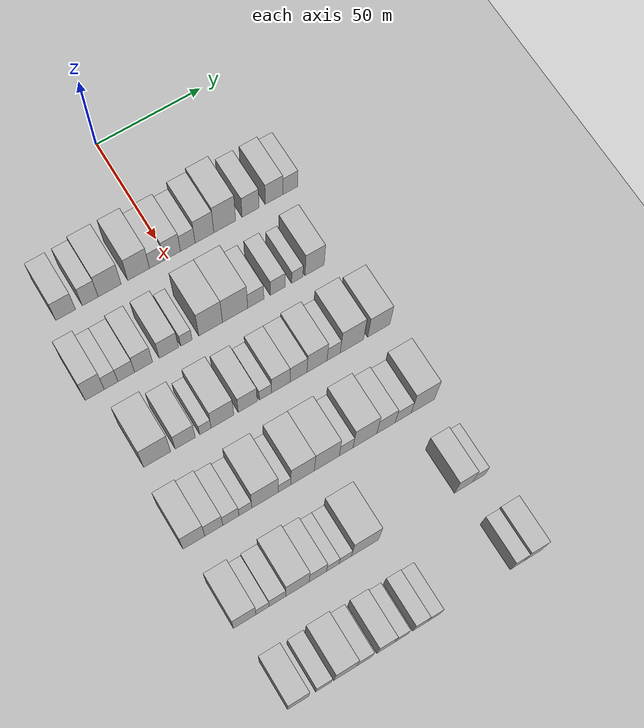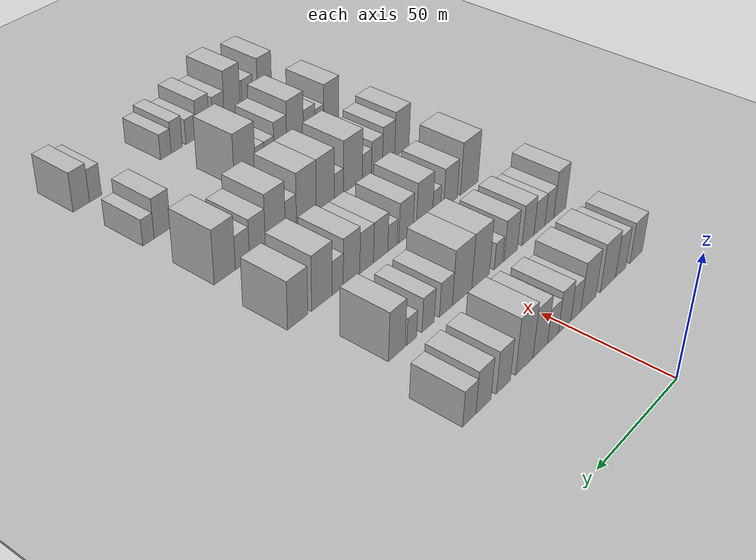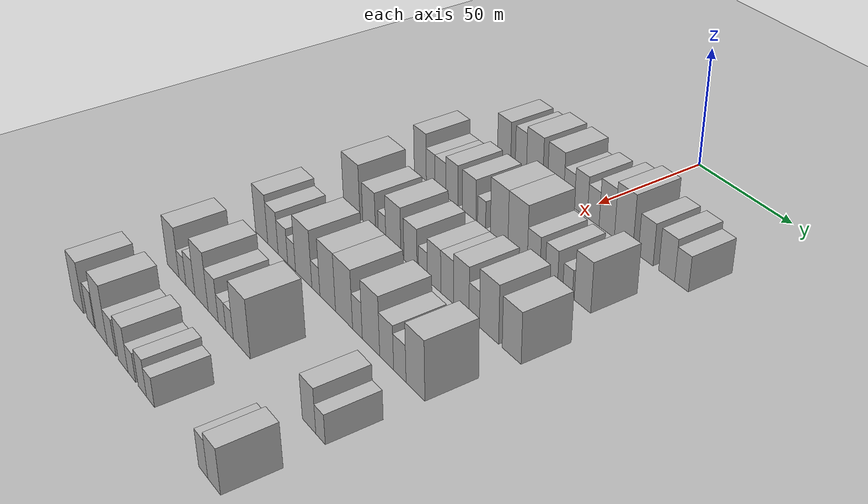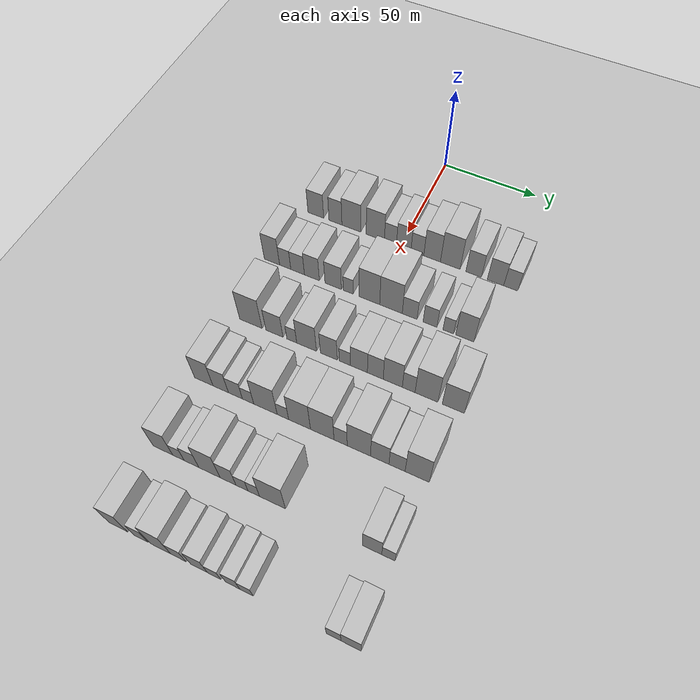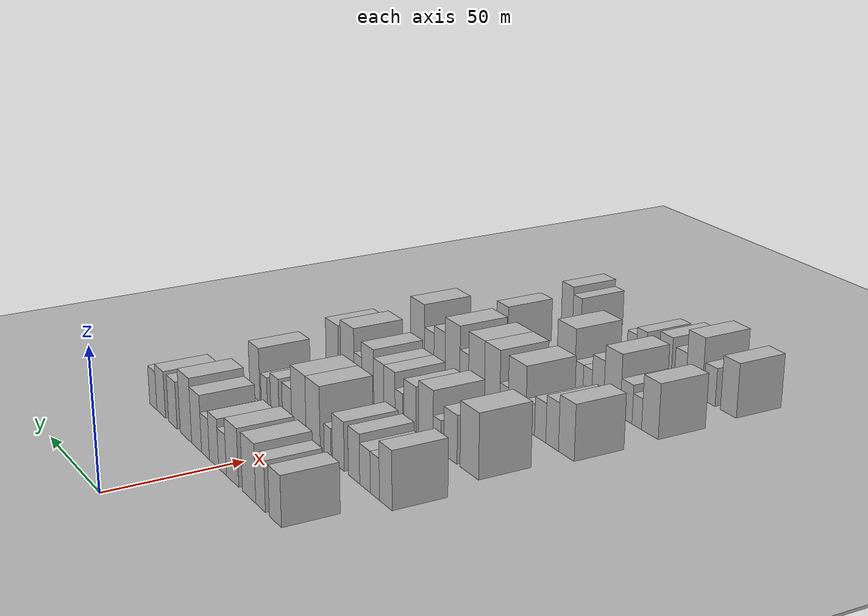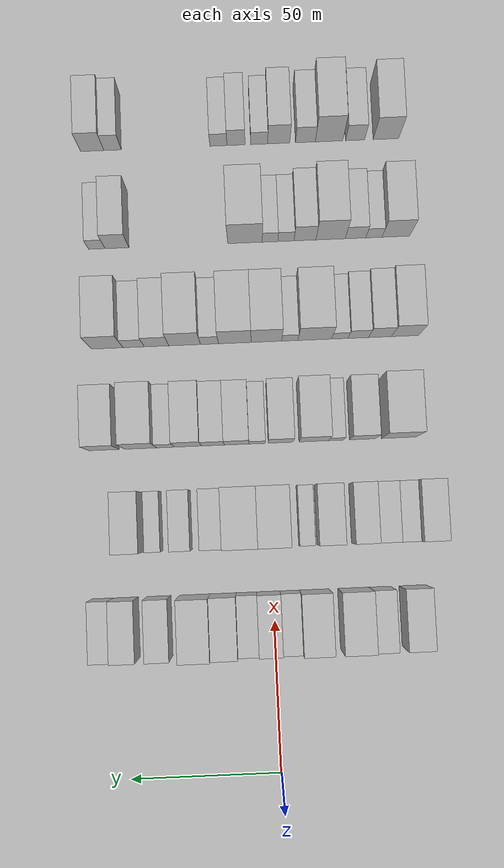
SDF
<sdf version="1.6">
 <world name="default">
  <include><name>ground_plane_1</name><uri>model://HANNAS_ground_plane</uri></include>
  <include>
   <name>ground_plane_2</name>
   <uri>model://HANNAS_ground_plane</uri>
   <pose>100 0 0  0 0 0</pose>
  </include>
  <model name="building_61">
   <static>1</static>
   <pose>50.0000 -46.7368 0 0.000000 0.000000 0.000000</pose>
   <link name="link">
    <pose>0 0 9.00 0 0 0</pose>
    <collision name="collision"><geometry><box><size>20.0000 8.9100 18.0000</size></box></geometry></collision>
    <visual name="visual">
     <cast_shadows>0</cast_shadows>
     <geometry><box><size>20.0000 8.9100 18.0000</size></box></geometry>
     <material>
      <script>
       <uri>model://HANNAS_wall/materials/scripts</uri>
       <uri>model://HANNAS_wall/materials/textures</uri>
       <name>vrc/HANNAS_wall</name>
      </script>
     </material>
    </visual>
   </link>
  </model>
  <model name="building_62">
   <static>1</static>
   <pose>50.0000 -35.6506 0 0.000000 0.000000 0.000000</pose>
   <link name="link">
    <pose>0 0 9.00 0 0 0</pose>
    <collision name="collision"><geometry><box><size>20.0000 7.2624 18.0000</size></box></geometry></collision>
    <visual name="visual">
     <cast_shadows>0</cast_shadows>
     <geometry><box><size>20.0000 7.2624 18.0000</size></box></geometry>
     <material>
      <script>
       <uri>model://HANNAS_wall/materials/scripts</uri>
       <uri>model://HANNAS_wall/materials/textures</uri>
       <name>vrc/HANNAS_wall</name>
      </script>
     </material>
    </visual>
   </link>
  </model>
  <model name="building_63">
   <static>1</static>
   <pose>50.0000 -26.7902 0 0.000000 0.000000 0.000000</pose>
   <link name="link">
    <pose>0 0 10.50 0 0 0</pose>
    <collision name="collision"><geometry><box><size>20.0000 10.4585 21.0000</size></box></geometry></collision>
    <visual name="visual">
     <cast_shadows>0</cast_shadows>
     <geometry><box><size>20.0000 10.4585 21.0000</size></box></geometry>
     <material>
      <script>
       <uri>model://HANNAS_wall/materials/scripts</uri>
       <uri>model://HANNAS_wall/materials/textures</uri>
       <name>vrc/HANNAS_wall</name>
      </script>
     </material>
    </visual>
   </link>
  </model>
  <model name="building_64">
   <static>1</static>
   <pose>50.0000 -13.5660 0 0.000000 0.000000 0.000000</pose>
   <link name="link">
    <pose>0 0 10.50 0 0 0</pose>
    <collision name="collision"><geometry><box><size>20.0000 9.9898 21.0000</size></box></geometry></collision>
    <visual name="visual">
     <cast_shadows>0</cast_shadows>
     <geometry><box><size>20.0000 9.9898 21.0000</size></box></geometry>
     <material>
      <script>
       <uri>model://HANNAS_wall/materials/scripts</uri>
       <uri>model://HANNAS_wall/materials/textures</uri>
       <name>vrc/HANNAS_wall</name>
      </script>
     </material>
    </visual>
   </link>
  </model>
  <model name="building_65">
   <static>1</static>
   <pose>50.0000 -5.3005 0 0.000000 0.000000 0.000000</pose>
   <link name="link">
    <pose>0 0 7.50 0 0 0</pose>
    <collision name="collision"><geometry><box><size>20.0000 6.5413 15.0000</size></box></geometry></collision>
    <visual name="visual">
     <cast_shadows>0</cast_shadows>
     <geometry><box><size>20.0000 6.5413 15.0000</size></box></geometry>
     <material>
      <script>
       <uri>model://HANNAS_wall/materials/scripts</uri>
       <uri>model://HANNAS_wall/materials/textures</uri>
       <name>vrc/HANNAS_wall</name>
      </script>
     </material>
    </visual>
   </link>
  </model>
  <model name="building_66">
   <static>1</static>
   <pose>50.0000 1.8615 0 0.000000 0.000000 0.000000</pose>
   <link name="link">
    <pose>0 0 9.00 0 0 0</pose>
    <collision name="collision"><geometry><box><size>20.0000 7.7826 18.0000</size></box></geometry></collision>
    <visual name="visual">
     <cast_shadows>0</cast_shadows>
     <geometry><box><size>20.0000 7.7826 18.0000</size></box></geometry>
     <material>
      <script>
       <uri>model://HANNAS_wall/materials/scripts</uri>
       <uri>model://HANNAS_wall/materials/textures</uri>
       <name>vrc/HANNAS_wall</name>
      </script>
     </material>
    </visual>
   </link>
  </model>
  <model name="building_67">
   <static>1</static>
   <pose>50.0000 9.1710 0 0.000000 0.000000 0.000000</pose>
   <link name="link">
    <pose>0 0 7.50 0 0 0</pose>
    <collision name="collision"><geometry><box><size>20.0000 6.8363 15.0000</size></box></geometry></collision>
    <visual name="visual">
     <cast_shadows>0</cast_shadows>
     <geometry><box><size>20.0000 6.8363 15.0000</size></box></geometry>
     <material>
      <script>
       <uri>model://HANNAS_wall/materials/scripts</uri>
       <uri>model://HANNAS_wall/materials/textures</uri>
       <name>vrc/HANNAS_wall</name>
      </script>
     </material>
    </visual>
   </link>
  </model>
  <model name="building_68">
   <static>1</static>
   <pose>50.0000 16.9733 0 0.000000 0.000000 0.000000</pose>
   <link name="link">
    <pose>0 0 10.50 0 0 0</pose>
    <collision name="collision"><geometry><box><size>20.0000 8.7684 21.0000</size></box></geometry></collision>
    <visual name="visual">
     <cast_shadows>0</cast_shadows>
     <geometry><box><size>20.0000 8.7684 21.0000</size></box></geometry>
     <material>
      <script>
       <uri>model://HANNAS_wall/materials/scripts</uri>
       <uri>model://HANNAS_wall/materials/textures</uri>
       <name>vrc/HANNAS_wall</name>
      </script>
     </material>
    </visual>
   </link>
  </model>
  <model name="building_69">
   <static>1</static>
   <pose>50.0000 26.4883 0 0.000000 0.000000 0.000000</pose>
   <link name="link">
    <pose>0 0 12.00 0 0 0</pose>
    <collision name="collision"><geometry><box><size>20.0000 10.2615 24.0000</size></box></geometry></collision>
    <visual name="visual">
     <cast_shadows>0</cast_shadows>
     <geometry><box><size>20.0000 10.2615 24.0000</size></box></geometry>
     <material>
      <script>
       <uri>model://HANNAS_wall/materials/scripts</uri>
       <uri>model://HANNAS_wall/materials/textures</uri>
       <name>vrc/HANNAS_wall</name>
      </script>
     </material>
    </visual>
   </link>
  </model>
  <model name="building_70">
   <static>1</static>
   <pose>50.0000 38.6159 0 0.000000 0.000000 0.000000</pose>
   <link name="link">
    <pose>0 0 9.00 0 0 0</pose>
    <collision name="collision"><geometry><box><size>20.0000 7.9937 18.0000</size></box></geometry></collision>
    <visual name="visual">
     <cast_shadows>0</cast_shadows>
     <geometry><box><size>20.0000 7.9937 18.0000</size></box></geometry>
     <material>
      <script>
       <uri>model://HANNAS_wall/materials/scripts</uri>
       <uri>model://HANNAS_wall/materials/textures</uri>
       <name>vrc/HANNAS_wall</name>
      </script>
     </material>
    </visual>
   </link>
  </model>
  <model name="building_71">
   <static>1</static>
   <pose>50.0000 49.7891 0 0.000000 0.000000 0.000000</pose>
   <link name="link">
    <pose>0 0 9.00 0 0 0</pose>
    <collision name="collision"><geometry><box><size>20.0000 8.3528 18.0000</size></box></geometry></collision>
    <visual name="visual">
     <cast_shadows>0</cast_shadows>
     <geometry><box><size>20.0000 8.3528 18.0000</size></box></geometry>
     <material>
      <script>
       <uri>model://HANNAS_wall/materials/scripts</uri>
       <uri>model://HANNAS_wall/materials/textures</uri>
       <name>vrc/HANNAS_wall</name>
      </script>
     </material>
    </visual>
   </link>
  </model>
  <model name="building_72">
   <static>1</static>
   <pose>50.0000 57.5065 0 0.000000 0.000000 0.000000</pose>
   <link name="link">
    <pose>0 0 7.50 0 0 0</pose>
    <collision name="collision"><geometry><box><size>20.0000 7.0818 15.0000</size></box></geometry></collision>
    <visual name="visual">
     <cast_shadows>0</cast_shadows>
     <geometry><box><size>20.0000 7.0818 15.0000</size></box></geometry>
     <material>
      <script>
       <uri>model://HANNAS_wall/materials/scripts</uri>
       <uri>model://HANNAS_wall/materials/textures</uri>
       <name>vrc/HANNAS_wall</name>
      </script>
     </material>
    </visual>
   </link>
  </model>
  <model name="building_183">
   <static>1</static>
   <pose>85.0000 -52.8776 0 0.000000 0.000000 0.000000</pose>
   <link name="link">
    <pose>0 0 10.50 0 0 0</pose>
    <collision name="collision"><geometry><box><size>20.0000 8.4892 21.0000</size></box></geometry></collision>
    <visual name="visual">
     <cast_shadows>0</cast_shadows>
     <geometry><box><size>20.0000 8.4892 21.0000</size></box></geometry>
     <material>
      <script>
       <uri>model://HANNAS_wall/materials/scripts</uri>
       <uri>model://HANNAS_wall/materials/textures</uri>
       <name>vrc/HANNAS_wall</name>
      </script>
     </material>
    </visual>
   </link>
  </model>
  <model name="building_184">
   <static>1</static>
   <pose>85.0000 -45.5589 0 0.000000 0.000000 0.000000</pose>
   <link name="link">
    <pose>0 0 7.50 0 0 0</pose>
    <collision name="collision"><geometry><box><size>20.0000 6.1482 15.0000</size></box></geometry></collision>
    <visual name="visual">
     <cast_shadows>0</cast_shadows>
     <geometry><box><size>20.0000 6.1482 15.0000</size></box></geometry>
     <material>
      <script>
       <uri>model://HANNAS_wall/materials/scripts</uri>
       <uri>model://HANNAS_wall/materials/textures</uri>
       <name>vrc/HANNAS_wall</name>
      </script>
     </material>
    </visual>
   </link>
  </model>
  <model name="building_185">
   <static>1</static>
   <pose>85.0000 -38.7709 0 0.000000 0.000000 0.000000</pose>
   <link name="link">
    <pose>0 0 7.50 0 0 0</pose>
    <collision name="collision"><geometry><box><size>20.0000 7.4279 15.0000</size></box></geometry></collision>
    <visual name="visual">
     <cast_shadows>0</cast_shadows>
     <geometry><box><size>20.0000 7.4279 15.0000</size></box></geometry>
     <material>
      <script>
       <uri>model://HANNAS_wall/materials/scripts</uri>
       <uri>model://HANNAS_wall/materials/textures</uri>
       <name>vrc/HANNAS_wall</name>
      </script>
     </material>
    </visual>
   </link>
  </model>
  <model name="building_186">
   <static>1</static>
   <pose>85.0000 -31.0342 0 0.000000 0.000000 0.000000</pose>
   <link name="link">
    <pose>0 0 9.00 0 0 0</pose>
    <collision name="collision"><geometry><box><size>20.0000 8.0455 18.0000</size></box></geometry></collision>
    <visual name="visual">
     <cast_shadows>0</cast_shadows>
     <geometry><box><size>20.0000 8.0455 18.0000</size></box></geometry>
     <material>
      <script>
       <uri>model://HANNAS_wall/materials/scripts</uri>
       <uri>model://HANNAS_wall/materials/textures</uri>
       <name>vrc/HANNAS_wall</name>
      </script>
     </material>
    </visual>
   </link>
  </model>
  <model name="building_187">
   <static>1</static>
   <pose>85.0000 -19.6444 0 0.000000 0.000000 0.000000</pose>
   <link name="link">
    <pose>0 0 9.00 0 0 0</pose>
    <collision name="collision"><geometry><box><size>20.0000 8.7340 18.0000</size></box></geometry></collision>
    <visual name="visual">
     <cast_shadows>0</cast_shadows>
     <geometry><box><size>20.0000 8.7340 18.0000</size></box></geometry>
     <material>
      <script>
       <uri>model://HANNAS_wall/materials/scripts</uri>
       <uri>model://HANNAS_wall/materials/textures</uri>
       <name>vrc/HANNAS_wall</name>
      </script>
     </material>
    </visual>
   </link>
  </model>
  <model name="building_188">
   <static>1</static>
   <pose>85.0000 -11.6924 0 0.000000 0.000000 0.000000</pose>
   <link name="link">
    <pose>0 0 6.00 0 0 0</pose>
    <collision name="collision"><geometry><box><size>20.0000 5.1700 12.0000</size></box></geometry></collision>
    <visual name="visual">
     <cast_shadows>0</cast_shadows>
     <geometry><box><size>20.0000 5.1700 12.0000</size></box></geometry>
     <material>
      <script>
       <uri>model://HANNAS_wall/materials/scripts</uri>
       <uri>model://HANNAS_wall/materials/textures</uri>
       <name>vrc/HANNAS_wall</name>
      </script>
     </material>
    </visual>
   </link>
  </model>
  <model name="building_189">
   <static>1</static>
   <pose>85.0000 -0.6763 0 0.000000 0.000000 0.000000</pose>
   <link name="link">
    <pose>0 0 12.00 0 0 0</pose>
    <collision name="collision"><geometry><box><size>20.0000 10.8621 24.0000</size></box></geometry></collision>
    <visual name="visual">
     <cast_shadows>0</cast_shadows>
     <geometry><box><size>20.0000 10.8621 24.0000</size></box></geometry>
     <material>
      <script>
       <uri>model://HANNAS_wall/materials/scripts</uri>
       <uri>model://HANNAS_wall/materials/textures</uri>
       <name>vrc/HANNAS_wall</name>
      </script>
     </material>
    </visual>
   </link>
  </model>
  <model name="building_190">
   <static>1</static>
   <pose>85.0000 10.5556 0 0.000000 0.000000 0.000000</pose>
   <link name="link">
    <pose>0 0 12.00 0 0 0</pose>
    <collision name="collision"><geometry><box><size>20.0000 11.6018 24.0000</size></box></geometry></collision>
    <visual name="visual">
     <cast_shadows>0</cast_shadows>
     <geometry><box><size>20.0000 11.6018 24.0000</size></box></geometry>
     <material>
      <script>
       <uri>model://HANNAS_wall/materials/scripts</uri>
       <uri>model://HANNAS_wall/materials/textures</uri>
       <name>vrc/HANNAS_wall</name>
      </script>
     </material>
    </visual>
   </link>
  </model>
  <model name="building_191">
   <static>1</static>
   <pose>85.0000 20.1054 0 0.000000 0.000000 0.000000</pose>
   <link name="link">
    <pose>0 0 7.50 0 0 0</pose>
    <collision name="collision"><geometry><box><size>20.0000 7.4977 15.0000</size></box></geometry></collision>
    <visual name="visual">
     <cast_shadows>0</cast_shadows>
     <geometry><box><size>20.0000 7.4977 15.0000</size></box></geometry>
     <material>
      <script>
       <uri>model://HANNAS_wall/materials/scripts</uri>
       <uri>model://HANNAS_wall/materials/textures</uri>
       <name>vrc/HANNAS_wall</name>
      </script>
     </material>
    </visual>
   </link>
  </model>
  <model name="building_192">
   <static>1</static>
   <pose>85.0000 30.3245 0 0.000000 0.000000 0.000000</pose>
   <link name="link">
    <pose>0 0 7.50 0 0 0</pose>
    <collision name="collision"><geometry><box><size>20.0000 6.9406 15.0000</size></box></geometry></collision>
    <visual name="visual">
     <cast_shadows>0</cast_shadows>
     <geometry><box><size>20.0000 6.9406 15.0000</size></box></geometry>
     <material>
      <script>
       <uri>model://HANNAS_wall/materials/scripts</uri>
       <uri>model://HANNAS_wall/materials/textures</uri>
       <name>vrc/HANNAS_wall</name>
      </script>
     </material>
    </visual>
   </link>
  </model>
  <model name="building_193">
   <static>1</static>
   <pose>85.0000 39.4359 0 0.000000 0.000000 0.000000</pose>
   <link name="link">
    <pose>0 0 6.00 0 0 0</pose>
    <collision name="collision"><geometry><box><size>20.0000 5.2821 12.0000</size></box></geometry></collision>
    <visual name="visual">
     <cast_shadows>0</cast_shadows>
     <geometry><box><size>20.0000 5.2821 12.0000</size></box></geometry>
     <material>
      <script>
       <uri>model://HANNAS_wall/materials/scripts</uri>
       <uri>model://HANNAS_wall/materials/textures</uri>
       <name>vrc/HANNAS_wall</name>
      </script>
     </material>
    </visual>
   </link>
  </model>
  <model name="building_194">
   <static>1</static>
   <pose>85.0000 47.5501 0 0.000000 0.000000 0.000000</pose>
   <link name="link">
    <pose>0 0 10.50 0 0 0</pose>
    <collision name="collision"><geometry><box><size>20.0000 8.9465 21.0000</size></box></geometry></collision>
    <visual name="visual">
     <cast_shadows>0</cast_shadows>
     <geometry><box><size>20.0000 8.9465 21.0000</size></box></geometry>
     <material>
      <script>
       <uri>model://HANNAS_wall/materials/scripts</uri>
       <uri>model://HANNAS_wall/materials/textures</uri>
       <name>vrc/HANNAS_wall</name>
      </script>
     </material>
    </visual>
   </link>
  </model>
  <model name="building_313">
   <static>1</static>
   <pose>120.0000 -44.8770 0 0.000000 0.000000 0.000000</pose>
   <link name="link">
    <pose>0 0 12.00 0 0 0</pose>
    <collision name="collision"><geometry><box><size>20.0000 11.8777 24.0000</size></box></geometry></collision>
    <visual name="visual">
     <cast_shadows>0</cast_shadows>
     <geometry><box><size>20.0000 11.8777 24.0000</size></box></geometry>
     <material>
      <script>
       <uri>model://HANNAS_wall/materials/scripts</uri>
       <uri>model://HANNAS_wall/materials/textures</uri>
       <name>vrc/HANNAS_wall</name>
      </script>
     </material>
    </visual>
   </link>
  </model>
  <model name="building_314">
   <static>1</static>
   <pose>120.0000 -32.4775 0 0.000000 0.000000 0.000000</pose>
   <link name="link">
    <pose>0 0 9.00 0 0 0</pose>
    <collision name="collision"><geometry><box><size>20.0000 8.9213 18.0000</size></box></geometry></collision>
    <visual name="visual">
     <cast_shadows>0</cast_shadows>
     <geometry><box><size>20.0000 8.9213 18.0000</size></box></geometry>
     <material>
      <script>
       <uri>model://HANNAS_wall/materials/scripts</uri>
       <uri>model://HANNAS_wall/materials/textures</uri>
       <name>vrc/HANNAS_wall</name>
      </script>
     </material>
    </visual>
   </link>
  </model>
  <model name="building_315">
   <static>1</static>
   <pose>120.0000 -23.4645 0 0.000000 0.000000 0.000000</pose>
   <link name="link">
    <pose>0 0 6.00 0 0 0</pose>
    <collision name="collision"><geometry><box><size>20.0000 5.1047 12.0000</size></box></geometry></collision>
    <visual name="visual">
     <cast_shadows>0</cast_shadows>
     <geometry><box><size>20.0000 5.1047 12.0000</size></box></geometry>
     <material>
      <script>
       <uri>model://HANNAS_wall/materials/scripts</uri>
       <uri>model://HANNAS_wall/materials/textures</uri>
       <name>vrc/HANNAS_wall</name>
      </script>
     </material>
    </visual>
   </link>
  </model>
  <model name="building_316">
   <static>1</static>
   <pose>120.0000 -15.8586 0 0.000000 0.000000 0.000000</pose>
   <link name="link">
    <pose>0 0 10.50 0 0 0</pose>
    <collision name="collision"><geometry><box><size>20.0000 10.1072 21.0000</size></box></geometry></collision>
    <visual name="visual">
     <cast_shadows>0</cast_shadows>
     <geometry><box><size>20.0000 10.1072 21.0000</size></box></geometry>
     <material>
      <script>
       <uri>model://HANNAS_wall/materials/scripts</uri>
       <uri>model://HANNAS_wall/materials/textures</uri>
       <name>vrc/HANNAS_wall</name>
      </script>
     </material>
    </visual>
   </link>
  </model>
  <model name="building_317">
   <static>1</static>
   <pose>120.0000 -4.5445 0 0.000000 0.000000 0.000000</pose>
   <link name="link">
    <pose>0 0 9.00 0 0 0</pose>
    <collision name="collision"><geometry><box><size>20.0000 8.5210 18.0000</size></box></geometry></collision>
    <visual name="visual">
     <cast_shadows>0</cast_shadows>
     <geometry><box><size>20.0000 8.5210 18.0000</size></box></geometry>
     <material>
      <script>
       <uri>model://HANNAS_wall/materials/scripts</uri>
       <uri>model://HANNAS_wall/materials/textures</uri>
       <name>vrc/HANNAS_wall</name>
      </script>
     </material>
    </visual>
   </link>
  </model>
  <model name="building_318">
   <static>1</static>
   <pose>120.0000 3.4917 0 0.000000 0.000000 0.000000</pose>
   <link name="link">
    <pose>0 0 6.00 0 0 0</pose>
    <collision name="collision"><geometry><box><size>20.0000 5.5514 12.0000</size></box></geometry></collision>
    <visual name="visual">
     <cast_shadows>0</cast_shadows>
     <geometry><box><size>20.0000 5.5514 12.0000</size></box></geometry>
     <material>
      <script>
       <uri>model://HANNAS_wall/materials/scripts</uri>
       <uri>model://HANNAS_wall/materials/textures</uri>
       <name>vrc/HANNAS_wall</name>
      </script>
     </material>
    </visual>
   </link>
  </model>
  <model name="building_319">
   <static>1</static>
   <pose>120.0000 10.4540 0 0.000000 0.000000 0.000000</pose>
   <link name="link">
    <pose>0 0 9.00 0 0 0</pose>
    <collision name="collision"><geometry><box><size>20.0000 8.3732 18.0000</size></box></geometry></collision>
    <visual name="visual">
     <cast_shadows>0</cast_shadows>
     <geometry><box><size>20.0000 8.3732 18.0000</size></box></geometry>
     <material>
      <script>
       <uri>model://HANNAS_wall/materials/scripts</uri>
       <uri>model://HANNAS_wall/materials/textures</uri>
       <name>vrc/HANNAS_wall</name>
      </script>
     </material>
    </visual>
   </link>
  </model>
  <model name="building_320">
   <static>1</static>
   <pose>120.0000 18.5164 0 0.000000 0.000000 0.000000</pose>
   <link name="link">
    <pose>0 0 9.00 0 0 0</pose>
    <collision name="collision"><geometry><box><size>20.0000 7.7517 18.0000</size></box></geometry></collision>
    <visual name="visual">
     <cast_shadows>0</cast_shadows>
     <geometry><box><size>20.0000 7.7517 18.0000</size></box></geometry>
     <material>
      <script>
       <uri>model://HANNAS_wall/materials/scripts</uri>
       <uri>model://HANNAS_wall/materials/textures</uri>
       <name>vrc/HANNAS_wall</name>
      </script>
     </material>
    </visual>
   </link>
  </model>
  <model name="building_321">
   <static>1</static>
   <pose>120.0000 27.0061 0 0.000000 0.000000 0.000000</pose>
   <link name="link">
    <pose>0 0 10.50 0 0 0</pose>
    <collision name="collision"><geometry><box><size>20.0000 9.2277 21.0000</size></box></geometry></collision>
    <visual name="visual">
     <cast_shadows>0</cast_shadows>
     <geometry><box><size>20.0000 9.2277 21.0000</size></box></geometry>
     <material>
      <script>
       <uri>model://HANNAS_wall/materials/scripts</uri>
       <uri>model://HANNAS_wall/materials/textures</uri>
       <name>vrc/HANNAS_wall</name>
      </script>
     </material>
    </visual>
   </link>
  </model>
  <model name="building_322">
   <static>1</static>
   <pose>120.0000 34.6685 0 0.000000 0.000000 0.000000</pose>
   <link name="link">
    <pose>0 0 7.50 0 0 0</pose>
    <collision name="collision"><geometry><box><size>20.0000 6.0973 15.0000</size></box></geometry></collision>
    <visual name="visual">
     <cast_shadows>0</cast_shadows>
     <geometry><box><size>20.0000 6.0973 15.0000</size></box></geometry>
     <material>
      <script>
       <uri>model://HANNAS_wall/materials/scripts</uri>
       <uri>model://HANNAS_wall/materials/textures</uri>
       <name>vrc/HANNAS_wall</name>
      </script>
     </material>
    </visual>
   </link>
  </model>
  <model name="building_323">
   <static>1</static>
   <pose>120.0000 43.1300 0 0.000000 0.000000 0.000000</pose>
   <link name="link">
    <pose>0 0 12.00 0 0 0</pose>
    <collision name="collision"><geometry><box><size>20.0000 10.8257 24.0000</size></box></geometry></collision>
    <visual name="visual">
     <cast_shadows>0</cast_shadows>
     <geometry><box><size>20.0000 10.8257 24.0000</size></box></geometry>
     <material>
      <script>
       <uri>model://HANNAS_wall/materials/scripts</uri>
       <uri>model://HANNAS_wall/materials/textures</uri>
       <name>vrc/HANNAS_wall</name>
      </script>
     </material>
    </visual>
   </link>
  </model>
  <model name="building_324">
   <static>1</static>
   <pose>120.0000 55.7097 0 0.000000 0.000000 0.000000</pose>
   <link name="link">
    <pose>0 0 10.50 0 0 0</pose>
    <collision name="collision"><geometry><box><size>20.0000 10.3336 21.0000</size></box></geometry></collision>
    <visual name="visual">
     <cast_shadows>0</cast_shadows>
     <geometry><box><size>20.0000 10.3336 21.0000</size></box></geometry>
     <material>
      <script>
       <uri>model://HANNAS_wall/materials/scripts</uri>
       <uri>model://HANNAS_wall/materials/textures</uri>
       <name>vrc/HANNAS_wall</name>
      </script>
     </material>
    </visual>
   </link>
  </model>
  <model name="building_439">
   <static>1</static>
   <pose>155.0000 -48.9598 0 0.000000 0.000000 0.000000</pose>
   <link name="link">
    <pose>0 0 10.50 0 0 0</pose>
    <collision name="collision"><geometry><box><size>20.0000 9.4734 21.0000</size></box></geometry></collision>
    <visual name="visual">
     <cast_shadows>0</cast_shadows>
     <geometry><box><size>20.0000 9.4734 21.0000</size></box></geometry>
     <material>
      <script>
       <uri>model://HANNAS_wall/materials/scripts</uri>
       <uri>model://HANNAS_wall/materials/textures</uri>
       <name>vrc/HANNAS_wall</name>
      </script>
     </material>
    </visual>
   </link>
  </model>
  <model name="building_440">
   <static>1</static>
   <pose>155.0000 -40.2973 0 0.000000 0.000000 0.000000</pose>
   <link name="link">
    <pose>0 0 9.00 0 0 0</pose>
    <collision name="collision"><geometry><box><size>20.0000 7.8516 18.0000</size></box></geometry></collision>
    <visual name="visual">
     <cast_shadows>0</cast_shadows>
     <geometry><box><size>20.0000 7.8516 18.0000</size></box></geometry>
     <material>
      <script>
       <uri>model://HANNAS_wall/materials/scripts</uri>
       <uri>model://HANNAS_wall/materials/textures</uri>
       <name>vrc/HANNAS_wall</name>
      </script>
     </material>
    </visual>
   </link>
  </model>
  <model name="building_441">
   <static>1</static>
   <pose>155.0000 -32.8342 0 0.000000 0.000000 0.000000</pose>
   <link name="link">
    <pose>0 0 7.50 0 0 0</pose>
    <collision name="collision"><geometry><box><size>20.0000 7.0745 15.0000</size></box></geometry></collision>
    <visual name="visual">
     <cast_shadows>0</cast_shadows>
     <geometry><box><size>20.0000 7.0745 15.0000</size></box></geometry>
     <material>
      <script>
       <uri>model://HANNAS_wall/materials/scripts</uri>
       <uri>model://HANNAS_wall/materials/textures</uri>
       <name>vrc/HANNAS_wall</name>
      </script>
     </material>
    </visual>
   </link>
  </model>
  <model name="building_442">
   <static>1</static>
   <pose>155.0000 -26.4592 0 0.000000 0.000000 0.000000</pose>
   <link name="link">
    <pose>0 0 6.00 0 0 0</pose>
    <collision name="collision"><geometry><box><size>20.0000 5.6754 12.0000</size></box></geometry></collision>
    <visual name="visual">
     <cast_shadows>0</cast_shadows>
     <geometry><box><size>20.0000 5.6754 12.0000</size></box></geometry>
     <material>
      <script>
       <uri>model://HANNAS_wall/materials/scripts</uri>
       <uri>model://HANNAS_wall/materials/textures</uri>
       <name>vrc/HANNAS_wall</name>
      </script>
     </material>
    </visual>
   </link>
  </model>
  <model name="building_443">
   <static>1</static>
   <pose>155.0000 -17.8222 0 0.000000 0.000000 0.000000</pose>
   <link name="link">
    <pose>0 0 12.00 0 0 0</pose>
    <collision name="collision"><geometry><box><size>20.0000 11.5986 24.0000</size></box></geometry></collision>
    <visual name="visual">
     <cast_shadows>0</cast_shadows>
     <geometry><box><size>20.0000 11.5986 24.0000</size></box></geometry>
     <material>
      <script>
       <uri>model://HANNAS_wall/materials/scripts</uri>
       <uri>model://HANNAS_wall/materials/textures</uri>
       <name>vrc/HANNAS_wall</name>
      </script>
     </material>
    </visual>
   </link>
  </model>
  <model name="building_444">
   <static>1</static>
   <pose>155.0000 -9.2327 0 0.000000 0.000000 0.000000</pose>
   <link name="link">
    <pose>0 0 6.00 0 0 0</pose>
    <collision name="collision"><geometry><box><size>20.0000 5.5805 12.0000</size></box></geometry></collision>
    <visual name="visual">
     <cast_shadows>0</cast_shadows>
     <geometry><box><size>20.0000 5.5805 12.0000</size></box></geometry>
     <material>
      <script>
       <uri>model://HANNAS_wall/materials/scripts</uri>
       <uri>model://HANNAS_wall/materials/textures</uri>
       <name>vrc/HANNAS_wall</name>
      </script>
     </material>
    </visual>
   </link>
  </model>
  <model name="building_445">
   <static>1</static>
   <pose>155.0000 -1.1675 0 0.000000 0.000000 0.000000</pose>
   <link name="link">
    <pose>0 0 12.00 0 0 0</pose>
    <collision name="collision"><geometry><box><size>20.0000 10.5499 24.0000</size></box></geometry></collision>
    <visual name="visual">
     <cast_shadows>0</cast_shadows>
     <geometry><box><size>20.0000 10.5499 24.0000</size></box></geometry>
     <material>
      <script>
       <uri>model://HANNAS_wall/materials/scripts</uri>
       <uri>model://HANNAS_wall/materials/textures</uri>
       <name>vrc/HANNAS_wall</name>
      </script>
     </material>
    </visual>
   </link>
  </model>
  <model name="building_446">
   <static>1</static>
   <pose>155.0000 9.7048 0 0.000000 0.000000 0.000000</pose>
   <link name="link">
    <pose>0 0 12.00 0 0 0</pose>
    <collision name="collision"><geometry><box><size>20.0000 11.1948 24.0000</size></box></geometry></collision>
    <visual name="visual">
     <cast_shadows>0</cast_shadows>
     <geometry><box><size>20.0000 11.1948 24.0000</size></box></geometry>
     <material>
      <script>
       <uri>model://HANNAS_wall/materials/scripts</uri>
       <uri>model://HANNAS_wall/materials/textures</uri>
       <name>vrc/HANNAS_wall</name>
      </script>
     </material>
    </visual>
   </link>
  </model>
  <model name="building_447">
   <static>1</static>
   <pose>155.0000 18.4071 0 0.000000 0.000000 0.000000</pose>
   <link name="link">
    <pose>0 0 7.50 0 0 0</pose>
    <collision name="collision"><geometry><box><size>20.0000 6.2098 15.0000</size></box></geometry></collision>
    <visual name="visual">
     <cast_shadows>0</cast_shadows>
     <geometry><box><size>20.0000 6.2098 15.0000</size></box></geometry>
     <material>
      <script>
       <uri>model://HANNAS_wall/materials/scripts</uri>
       <uri>model://HANNAS_wall/materials/textures</uri>
       <name>vrc/HANNAS_wall</name>
      </script>
     </material>
    </visual>
   </link>
  </model>
  <model name="building_448">
   <static>1</static>
   <pose>155.0000 26.9451 0 0.000000 0.000000 0.000000</pose>
   <link name="link">
    <pose>0 0 12.00 0 0 0</pose>
    <collision name="collision"><geometry><box><size>20.0000 10.8661 24.0000</size></box></geometry></collision>
    <visual name="visual">
     <cast_shadows>0</cast_shadows>
     <geometry><box><size>20.0000 10.8661 24.0000</size></box></geometry>
     <material>
      <script>
       <uri>model://HANNAS_wall/materials/scripts</uri>
       <uri>model://HANNAS_wall/materials/textures</uri>
       <name>vrc/HANNAS_wall</name>
      </script>
     </material>
    </visual>
   </link>
  </model>
  <model name="building_449">
   <static>1</static>
   <pose>155.0000 36.5959 0 0.000000 0.000000 0.000000</pose>
   <link name="link">
    <pose>0 0 9.00 0 0 0</pose>
    <collision name="collision"><geometry><box><size>20.0000 8.4355 18.0000</size></box></geometry></collision>
    <visual name="visual">
     <cast_shadows>0</cast_shadows>
     <geometry><box><size>20.0000 8.4355 18.0000</size></box></geometry>
     <material>
      <script>
       <uri>model://HANNAS_wall/materials/scripts</uri>
       <uri>model://HANNAS_wall/materials/textures</uri>
       <name>vrc/HANNAS_wall</name>
      </script>
     </material>
    </visual>
   </link>
  </model>
  <model name="building_450">
   <static>1</static>
   <pose>155.0000 44.4743 0 0.000000 0.000000 0.000000</pose>
   <link name="link">
    <pose>0 0 7.50 0 0 0</pose>
    <collision name="collision"><geometry><box><size>20.0000 7.3212 15.0000</size></box></geometry></collision>
    <visual name="visual">
     <cast_shadows>0</cast_shadows>
     <geometry><box><size>20.0000 7.3212 15.0000</size></box></geometry>
     <material>
      <script>
       <uri>model://HANNAS_wall/materials/scripts</uri>
       <uri>model://HANNAS_wall/materials/textures</uri>
       <name>vrc/HANNAS_wall</name>
      </script>
     </material>
    </visual>
   </link>
  </model>
  <model name="building_451">
   <static>1</static>
   <pose>155.0000 53.5416 0 0.000000 0.000000 0.000000</pose>
   <link name="link">
    <pose>0 0 12.00 0 0 0</pose>
    <collision name="collision"><geometry><box><size>20.0000 10.8135 24.0000</size></box></geometry></collision>
    <visual name="visual">
     <cast_shadows>0</cast_shadows>
     <geometry><box><size>20.0000 10.8135 24.0000</size></box></geometry>
     <material>
      <script>
       <uri>model://HANNAS_wall/materials/scripts</uri>
       <uri>model://HANNAS_wall/materials/textures</uri>
       <name>vrc/HANNAS_wall</name>
      </script>
     </material>
    </visual>
   </link>
  </model>
  <model name="building_567">
   <static>1</static>
   <pose>190.0000 -47.6617 0 0.000000 0.000000 0.000000</pose>
   <link name="link">
    <pose>0 0 10.50 0 0 0</pose>
    <collision name="collision"><geometry><box><size>20.0000 9.6631 21.0000</size></box></geometry></collision>
    <visual name="visual">
     <cast_shadows>0</cast_shadows>
     <geometry><box><size>20.0000 9.6631 21.0000</size></box></geometry>
     <material>
      <script>
       <uri>model://HANNAS_wall/materials/scripts</uri>
       <uri>model://HANNAS_wall/materials/textures</uri>
       <name>vrc/HANNAS_wall</name>
      </script>
     </material>
    </visual>
   </link>
  </model>
  <model name="building_568">
   <static>1</static>
   <pose>190.0000 -40.0124 0 0.000000 0.000000 0.000000</pose>
   <link name="link">
    <pose>0 0 6.00 0 0 0</pose>
    <collision name="collision"><geometry><box><size>20.0000 5.6356 12.0000</size></box></geometry></collision>
    <visual name="visual">
     <cast_shadows>0</cast_shadows>
     <geometry><box><size>20.0000 5.6356 12.0000</size></box></geometry>
     <material>
      <script>
       <uri>model://HANNAS_wall/materials/scripts</uri>
       <uri>model://HANNAS_wall/materials/textures</uri>
       <name>vrc/HANNAS_wall</name>
      </script>
     </material>
    </visual>
   </link>
  </model>
  <model name="building_569">
   <static>1</static>
   <pose>190.0000 -33.6142 0 0.000000 0.000000 0.000000</pose>
   <link name="link">
    <pose>0 0 7.50 0 0 0</pose>
    <collision name="collision"><geometry><box><size>20.0000 7.1607 15.0000</size></box></geometry></collision>
    <visual name="visual">
     <cast_shadows>0</cast_shadows>
     <geometry><box><size>20.0000 7.1607 15.0000</size></box></geometry>
     <material>
      <script>
       <uri>model://HANNAS_wall/materials/scripts</uri>
       <uri>model://HANNAS_wall/materials/textures</uri>
       <name>vrc/HANNAS_wall</name>
      </script>
     </material>
    </visual>
   </link>
  </model>
  <model name="building_570">
   <static>1</static>
   <pose>190.0000 -24.9408 0 0.000000 0.000000 0.000000</pose>
   <link name="link">
    <pose>0 0 12.00 0 0 0</pose>
    <collision name="collision"><geometry><box><size>20.0000 10.1862 24.0000</size></box></geometry></collision>
    <visual name="visual">
     <cast_shadows>0</cast_shadows>
     <geometry><box><size>20.0000 10.1862 24.0000</size></box></geometry>
     <material>
      <script>
       <uri>model://HANNAS_wall/materials/scripts</uri>
       <uri>model://HANNAS_wall/materials/textures</uri>
       <name>vrc/HANNAS_wall</name>
      </script>
     </material>
    </visual>
   </link>
  </model>
  <model name="building_571">
   <static>1</static>
   <pose>190.0000 -16.0635 0 0.000000 0.000000 0.000000</pose>
   <link name="link">
    <pose>0 0 9.00 0 0 0</pose>
    <collision name="collision"><geometry><box><size>20.0000 7.5685 18.0000</size></box></geometry></collision>
    <visual name="visual">
     <cast_shadows>0</cast_shadows>
     <geometry><box><size>20.0000 7.5685 18.0000</size></box></geometry>
     <material>
      <script>
       <uri>model://HANNAS_wall/materials/scripts</uri>
       <uri>model://HANNAS_wall/materials/textures</uri>
       <name>vrc/HANNAS_wall</name>
      </script>
     </material>
    </visual>
   </link>
  </model>
  <model name="building_572">
   <static>1</static>
   <pose>190.0000 -9.4741 0 0.000000 0.000000 0.000000</pose>
   <link name="link">
    <pose>0 0 6.00 0 0 0</pose>
    <collision name="collision"><geometry><box><size>20.0000 5.6102 12.0000</size></box></geometry></collision>
    <visual name="visual">
     <cast_shadows>0</cast_shadows>
     <geometry><box><size>20.0000 5.6102 12.0000</size></box></geometry>
     <material>
      <script>
       <uri>model://HANNAS_wall/materials/scripts</uri>
       <uri>model://HANNAS_wall/materials/textures</uri>
       <name>vrc/HANNAS_wall</name>
      </script>
     </material>
    </visual>
   </link>
  </model>
  <model name="building_573">
   <static>1</static>
   <pose>190.0000 -3.9643 0 0.000000 0.000000 0.000000</pose>
   <link name="link">
    <pose>0 0 6.00 0 0 0</pose>
    <collision name="collision"><geometry><box><size>20.0000 5.4094 12.0000</size></box></geometry></collision>
    <visual name="visual">
     <cast_shadows>0</cast_shadows>
     <geometry><box><size>20.0000 5.4094 12.0000</size></box></geometry>
     <material>
      <script>
       <uri>model://HANNAS_wall/materials/scripts</uri>
       <uri>model://HANNAS_wall/materials/textures</uri>
       <name>vrc/HANNAS_wall</name>
      </script>
     </material>
    </visual>
   </link>
  </model>
  <model name="building_574">
   <static>1</static>
   <pose>190.0000 4.7322 0 0.000000 0.000000 0.000000</pose>
   <link name="link">
    <pose>0 0 12.00 0 0 0</pose>
    <collision name="collision"><geometry><box><size>20.0000 11.9837 24.0000</size></box></geometry></collision>
    <visual name="visual">
     <cast_shadows>0</cast_shadows>
     <geometry><box><size>20.0000 11.9837 24.0000</size></box></geometry>
     <material>
      <script>
       <uri>model://HANNAS_wall/materials/scripts</uri>
       <uri>model://HANNAS_wall/materials/textures</uri>
       <name>vrc/HANNAS_wall</name>
      </script>
     </material>
    </visual>
   </link>
  </model>
  <model name="building_575">
   <static>1</static>
   <pose>190.0000 49.1987 0 0.000000 0.000000 0.000000</pose>
   <link name="link">
    <pose>0 0 9.00 0 0 0</pose>
    <collision name="collision"><geometry><box><size>20.0000 8.3164 18.0000</size></box></geometry></collision>
    <visual name="visual">
     <cast_shadows>0</cast_shadows>
     <geometry><box><size>20.0000 8.3164 18.0000</size></box></geometry>
     <material>
      <script>
       <uri>model://HANNAS_wall/materials/scripts</uri>
       <uri>model://HANNAS_wall/materials/textures</uri>
       <name>vrc/HANNAS_wall</name>
      </script>
     </material>
    </visual>
   </link>
  </model>
  <model name="building_576">
   <static>1</static>
   <pose>190.0000 56.2021 0 0.000000 0.000000 0.000000</pose>
   <link name="link">
    <pose>0 0 6.00 0 0 0</pose>
    <collision name="collision"><geometry><box><size>20.0000 5.6904 12.0000</size></box></geometry></collision>
    <visual name="visual">
     <cast_shadows>0</cast_shadows>
     <geometry><box><size>20.0000 5.6904 12.0000</size></box></geometry>
     <material>
      <script>
       <uri>model://HANNAS_wall/materials/scripts</uri>
       <uri>model://HANNAS_wall/materials/textures</uri>
       <name>vrc/HANNAS_wall</name>
      </script>
     </material>
    </visual>
   </link>
  </model>
  <model name="building_694">
   <static>1</static>
   <pose>225.0000 -46.0819 0 0.000000 0.000000 0.000000</pose>
   <link name="link">
    <pose>0 0 10.50 0 0 0</pose>
    <collision name="collision"><geometry><box><size>20.0000 8.9506 21.0000</size></box></geometry></collision>
    <visual name="visual">
     <cast_shadows>0</cast_shadows>
     <geometry><box><size>20.0000 8.9506 21.0000</size></box></geometry>
     <material>
      <script>
       <uri>model://HANNAS_wall/materials/scripts</uri>
       <uri>model://HANNAS_wall/materials/textures</uri>
       <name>vrc/HANNAS_wall</name>
      </script>
     </material>
    </visual>
   </link>
  </model>
  <model name="building_695">
   <static>1</static>
   <pose>225.0000 -35.2628 0 0.000000 0.000000 0.000000</pose>
   <link name="link">
    <pose>0 0 7.50 0 0 0</pose>
    <collision name="collision"><geometry><box><size>20.0000 6.6876 15.0000</size></box></geometry></collision>
    <visual name="visual">
     <cast_shadows>0</cast_shadows>
     <geometry><box><size>20.0000 6.6876 15.0000</size></box></geometry>
     <material>
      <script>
       <uri>model://HANNAS_wall/materials/scripts</uri>
       <uri>model://HANNAS_wall/materials/textures</uri>
       <name>vrc/HANNAS_wall</name>
      </script>
     </material>
    </visual>
   </link>
  </model>
  <model name="building_696">
   <static>1</static>
   <pose>225.0000 -26.1120 0 0.000000 0.000000 0.000000</pose>
   <link name="link">
    <pose>0 0 12.00 0 0 0</pose>
    <collision name="collision"><geometry><box><size>20.0000 9.6142 24.0000</size></box></geometry></collision>
    <visual name="visual">
     <cast_shadows>0</cast_shadows>
     <geometry><box><size>20.0000 9.6142 24.0000</size></box></geometry>
     <material>
      <script>
       <uri>model://HANNAS_wall/materials/scripts</uri>
       <uri>model://HANNAS_wall/materials/textures</uri>
       <name>vrc/HANNAS_wall</name>
      </script>
     </material>
    </visual>
   </link>
  </model>
  <model name="building_697">
   <static>1</static>
   <pose>225.0000 -17.8401 0 0.000000 0.000000 0.000000</pose>
   <link name="link">
    <pose>0 0 7.50 0 0 0</pose>
    <collision name="collision"><geometry><box><size>20.0000 6.9297 15.0000</size></box></geometry></collision>
    <visual name="visual">
     <cast_shadows>0</cast_shadows>
     <geometry><box><size>20.0000 6.9297 15.0000</size></box></geometry>
     <material>
      <script>
       <uri>model://HANNAS_wall/materials/scripts</uri>
       <uri>model://HANNAS_wall/materials/textures</uri>
       <name>vrc/HANNAS_wall</name>
      </script>
     </material>
    </visual>
   </link>
  </model>
  <model name="building_698">
   <static>1</static>
   <pose>225.0000 -8.5060 0 0.000000 0.000000 0.000000</pose>
   <link name="link">
    <pose>0 0 9.00 0 0 0</pose>
    <collision name="collision"><geometry><box><size>20.0000 7.7385 18.0000</size></box></geometry></collision>
    <visual name="visual">
     <cast_shadows>0</cast_shadows>
     <geometry><box><size>20.0000 7.7385 18.0000</size></box></geometry>
     <material>
      <script>
       <uri>model://HANNAS_wall/materials/scripts</uri>
       <uri>model://HANNAS_wall/materials/textures</uri>
       <name>vrc/HANNAS_wall</name>
      </script>
     </material>
    </visual>
   </link>
  </model>
  <model name="building_699">
   <static>1</static>
   <pose>225.0000 -1.6629 0 0.000000 0.000000 0.000000</pose>
   <link name="link">
    <pose>0 0 6.00 0 0 0</pose>
    <collision name="collision"><geometry><box><size>20.0000 5.9476 12.0000</size></box></geometry></collision>
    <visual name="visual">
     <cast_shadows>0</cast_shadows>
     <geometry><box><size>20.0000 5.9476 12.0000</size></box></geometry>
     <material>
      <script>
       <uri>model://HANNAS_wall/materials/scripts</uri>
       <uri>model://HANNAS_wall/materials/textures</uri>
       <name>vrc/HANNAS_wall</name>
      </script>
     </material>
    </visual>
   </link>
  </model>
  <model name="building_700">
   <static>1</static>
   <pose>225.0000 6.4579 0 0.000000 0.000000 0.000000</pose>
   <link name="link">
    <pose>0 0 7.50 0 0 0</pose>
    <collision name="collision"><geometry><box><size>20.0000 6.2940 15.0000</size></box></geometry></collision>
    <visual name="visual">
     <cast_shadows>0</cast_shadows>
     <geometry><box><size>20.0000 6.2940 15.0000</size></box></geometry>
     <material>
      <script>
       <uri>model://HANNAS_wall/materials/scripts</uri>
       <uri>model://HANNAS_wall/materials/textures</uri>
       <name>vrc/HANNAS_wall</name>
      </script>
     </material>
    </visual>
   </link>
  </model>
  <model name="building_701">
   <static>1</static>
   <pose>225.0000 12.5850 0 0.000000 0.000000 0.000000</pose>
   <link name="link">
    <pose>0 0 6.00 0 0 0</pose>
    <collision name="collision"><geometry><box><size>20.0000 5.9602 12.0000</size></box></geometry></collision>
    <visual name="visual">
     <cast_shadows>0</cast_shadows>
     <geometry><box><size>20.0000 5.9602 12.0000</size></box></geometry>
     <material>
      <script>
       <uri>model://HANNAS_wall/materials/scripts</uri>
       <uri>model://HANNAS_wall/materials/textures</uri>
       <name>vrc/HANNAS_wall</name>
      </script>
     </material>
    </visual>
   </link>
  </model>
  <model name="building_702">
   <static>1</static>
   <pose>225.0000 49.6959 0 0.000000 0.000000 0.000000</pose>
   <link name="link">
    <pose>0 0 7.50 0 0 0</pose>
    <collision name="collision"><geometry><box><size>20.0000 6.0872 15.0000</size></box></geometry></collision>
    <visual name="visual">
     <cast_shadows>0</cast_shadows>
     <geometry><box><size>20.0000 6.0872 15.0000</size></box></geometry>
     <material>
      <script>
       <uri>model://HANNAS_wall/materials/scripts</uri>
       <uri>model://HANNAS_wall/materials/textures</uri>
       <name>vrc/HANNAS_wall</name>
      </script>
     </material>
    </visual>
   </link>
  </model>
  <model name="building_703">
   <static>1</static>
   <pose>225.0000 56.8237 0 0.000000 0.000000 0.000000</pose>
   <link name="link">
    <pose>0 0 9.00 0 0 0</pose>
    <collision name="collision"><geometry><box><size>20.0000 8.1684 18.0000</size></box></geometry></collision>
    <visual name="visual">
     <cast_shadows>0</cast_shadows>
     <geometry><box><size>20.0000 8.1684 18.0000</size></box></geometry>
     <material>
      <script>
       <uri>model://HANNAS_wall/materials/scripts</uri>
       <uri>model://HANNAS_wall/materials/textures</uri>
       <name>vrc/HANNAS_wall</name>
      </script>
     </material>
    </visual>
   </link>
  </model>
 </world>
</sdf>
